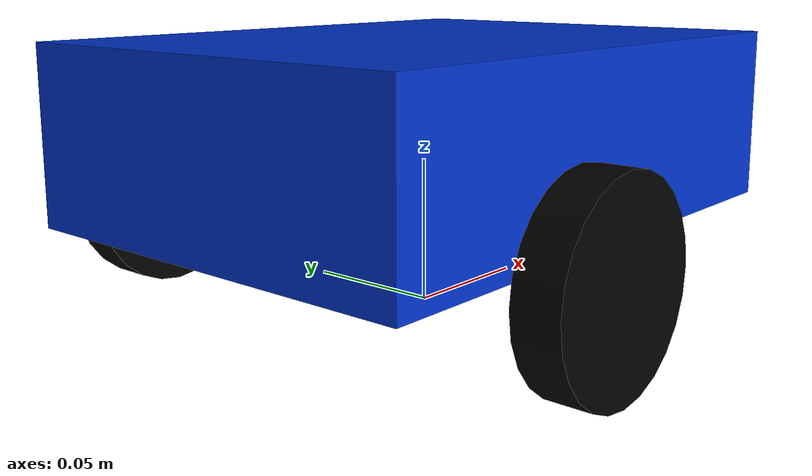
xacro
<?xml version="1.0"?>
<robot xmlns:xacro="http://www.ros.org/wiki/xacro">

  <xacro:include filename="materials.xacro" />

  <!-- Rectangular Mini Robot Car Dimensions -->
  <xacro:property name="chassis_length" value="0.20"/>
  <xacro:property name="chassis_width" value="0.15"/>
  <xacro:property name="chassis_height" value="0.06"/>
  <xacro:property name="chassis_mass" value="1.0"/>

  <xacro:property name="wheel_radius" value="0.0325"/>
  <xacro:property name="wheel_length" value="0.015"/>
  <xacro:property name="wheel_mass" value="0.05"/>
  <xacro:property name="wheel_offset_x" value="-0.04"/>
  <xacro:property name="wheel_offset_y" value="0.095"/>
  <xacro:property name="wheel_offset_z" value="0.0"/>

  <xacro:property name="caster_radius" value="0.015"/>
  <xacro:property name="caster_mass" value="0.02"/>
  <xacro:property name="caster_offset_x" value="0.07"/>

  <!-- Inertial Macros -->
  <xacro:macro name="inertial_box" params="mass x y z *origin">
    <inertial>
      <xacro:insert_block name="origin"/>
      <mass value="${mass}"/>
      <inertia ixx="${(1/12) * mass * (y*y + z*z)}" ixy="0.0" ixz="0.0"
               iyy="${(1/12) * mass * (x*x + z*z)}" iyz="0.0"
               izz="${(1/12) * mass * (x*x + y*y)}" />
    </inertial>
  </xacro:macro>

  <xacro:macro name="inertial_cylinder" params="mass length radius *origin">
    <inertial>
      <xacro:insert_block name="origin"/>
      <mass value="${mass}"/>
      <inertia ixx="${(1/12) * mass * (3*radius*radius + length*length)}" ixy="0.0" ixz="0.0"
               iyy="${(1/12) * mass * (3*radius*radius + length*length)}" iyz="0.0"
               izz="${(1/2) * mass * (radius*radius)}" />
    </inertial>
  </xacro:macro>

  <xacro:macro name="inertial_sphere" params="mass radius *origin">
    <inertial>
      <xacro:insert_block name="origin"/>
      <mass value="${mass}"/>
      <inertia ixx="${(2/5) * mass * radius * radius}" ixy="0.0" ixz="0.0"
               iyy="${(2/5) * mass * radius * radius}" iyz="0.0"
               izz="${(2/5) * mass * radius * radius}" />
    </inertial>
  </xacro:macro>

  <!-- BASE FOOTPRINT -->
  <link name="base_footprint"/>

  <!-- BASE LINK -->
  <joint name="base_joint" type="fixed">
    <parent link="base_footprint"/>
    <child link="base_link"/>
    <origin xyz="0 0 ${wheel_radius}" rpy="0 0 0"/>
  </joint>

  <link name="base_link">
    <visual>
      <origin xyz="0 0 ${chassis_height/2}" rpy="0 0 0"/>
      <geometry>
        <box size="${chassis_length} ${chassis_width} ${chassis_height}"/>
      </geometry>
      <material name="blue"/>
    </visual>
    <collision>
      <origin xyz="0 0 ${chassis_height/2}" rpy="0 0 0"/>
      <geometry>
        <box size="${chassis_length} ${chassis_width} ${chassis_height}"/>
      </geometry>
    </collision>
    <xacro:inertial_box mass="${chassis_mass}" x="${chassis_length}" y="${chassis_width}" z="${chassis_height}">
      <origin xyz="0 0 ${chassis_height/2}" rpy="0 0 0"/>
    </xacro:inertial_box>
  </link>

  <!-- LEFT WHEEL (REAR) -->
  <joint name="left_wheel_joint" type="continuous">
    <parent link="base_link"/>
    <child link="left_wheel"/>
    <origin xyz="${wheel_offset_x} ${wheel_offset_y} ${wheel_offset_z}" rpy="-${pi/2} 0 0"/>
    <axis xyz="0 0 1"/>
  </joint>

  <link name="left_wheel">
    <visual>
      <geometry>
        <cylinder radius="${wheel_radius}" length="${wheel_length}"/>
      </geometry>
      <material name="black"/>
    </visual>
    <collision>
      <geometry>
        <cylinder radius="${wheel_radius}" length="${wheel_length}"/>
      </geometry>
    </collision>
    <xacro:inertial_cylinder mass="${wheel_mass}" length="${wheel_length}" radius="${wheel_radius}">
      <origin xyz="0 0 0" rpy="0 0 0"/>
    </xacro:inertial_cylinder>
  </link>

  <!-- RIGHT WHEEL (REAR) -->
  <joint name="right_wheel_joint" type="continuous">
    <parent link="base_link"/>
    <child link="right_wheel"/>
    <origin xyz="${wheel_offset_x} -${wheel_offset_y} ${wheel_offset_z}" rpy="${pi/2} 0 0"/>
    <axis xyz="0 0 -1"/>
  </joint>

  <link name="right_wheel">
    <visual>
      <geometry>
        <cylinder radius="${wheel_radius}" length="${wheel_length}"/>
      </geometry>
      <material name="black"/>
    </visual>
    <collision>
      <geometry>
        <cylinder radius="${wheel_radius}" length="${wheel_length}"/>
      </geometry>
    </collision>
    <xacro:inertial_cylinder mass="${wheel_mass}" length="${wheel_length}" radius="${wheel_radius}">
      <origin xyz="0 0 0" rpy="0 0 0"/>
    </xacro:inertial_cylinder>
  </link>

  <!-- SINGLE FRONT CASTER WHEEL -->
  <joint name="front_caster_joint" type="fixed">
    <parent link="base_link"/>
    <child link="front_caster"/>
    <origin xyz="${caster_offset_x} 0 -${wheel_radius - caster_radius}" rpy="0 0 0"/>
  </joint>

  <link name="front_caster">
    <visual>
      <geometry>
        <sphere radius="${caster_radius}"/>
      </geometry>
      <material name="white"/>
    </visual>
    <collision>
      <geometry>
        <sphere radius="${caster_radius}"/>
      </geometry>
    </collision>
    <xacro:inertial_sphere mass="${caster_mass}" radius="${caster_radius}">
      <origin xyz="0 0 0" rpy="0 0 0"/>
    </xacro:inertial_sphere>
  </link>

</robot>

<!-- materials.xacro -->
<robot xmlns:xacro="http://www.ros.org/wiki/xacro">

  <material name="white">
    <color rgba="1.0 1.0 1.0 1.0"/>
  </material>

  <material name="black">
    <color rgba="0.0 0.0 0.0 1.0"/>
  </material>

  <material name="blue">
    <color rgba="0.0 0.2 0.8 1.0"/>
  </material>

  <material name="red">
    <color rgba="0.8 0.0 0.0 1.0"/>
  </material>

  <material name="grey">
    <color rgba="0.5 0.5 0.5 1.0"/>
  </material>

</robot>
